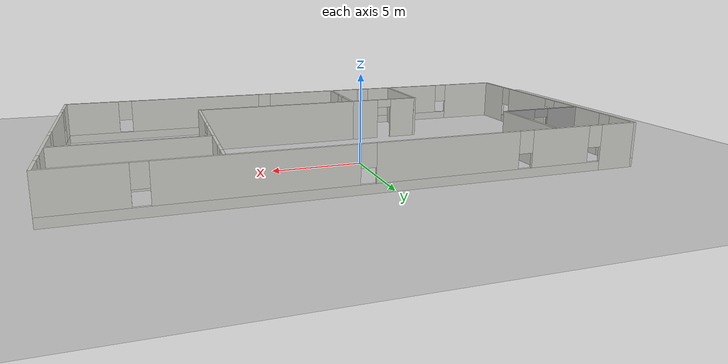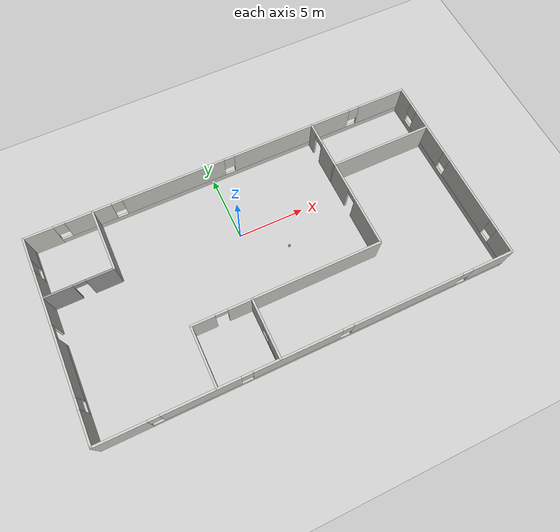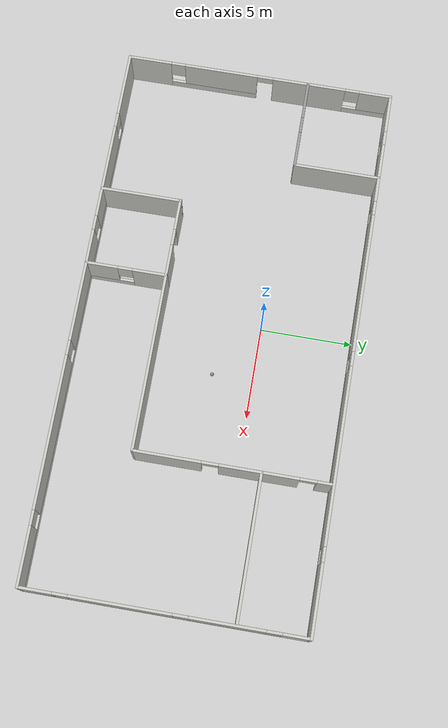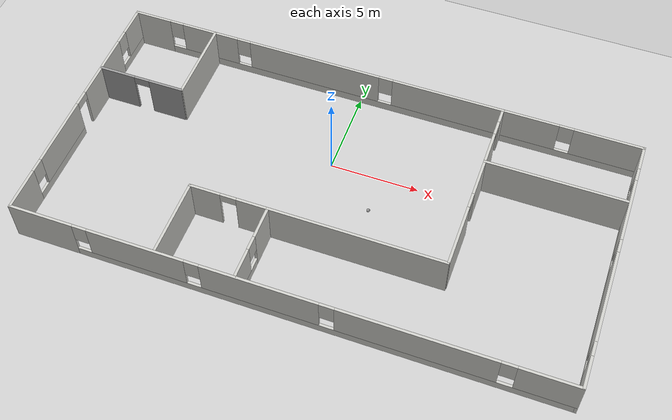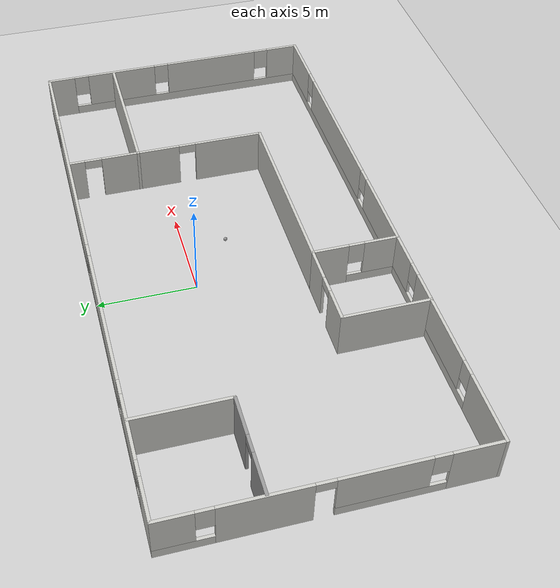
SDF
<sdf version="1.6">
 <world name="default">
  <light name="sun" type="directional">
   <pose>0 0 10 0 -0 0</pose>
   <diffuse>0.8 0.8 0.8 1</diffuse>
   <specular>0.2 0.2 0.2 1</specular>
   <attenuation>
    <range>1000</range>
    <constant>0.9</constant>
    <linear>0.01</linear>
    <quadratic>0.001</quadratic>
   </attenuation>
   <direction>-0.5 0.1 -0.9</direction>
  </light>
  <model name="ground_plane">
   <static>1</static>
   <link name="link">
    <collision name="collision">
     <geometry><plane><normal>0 0 1</normal><size>100 100</size></plane></geometry>
     <surface><friction><ode><mu>100</mu><mu2>50</mu2></ode></friction></surface>
    </collision>
    <visual name="visual">
     <cast_shadows>0</cast_shadows>
     <geometry><plane><normal>0 0 1</normal><size>100 100</size></plane></geometry>
     <material>
      <script><uri>file://media/materials/scripts/gazebo.material</uri><name>Gazebo/Grey</name></script>
     </material>
    </visual>
   </link>
  </model>
  <gravity>0 0 -9.8</gravity>
  <magnetic_field>6e-06 2.3e-05 -4.2e-05</magnetic_field>
  <atmosphere type="adiabatic"/>
  <physics name="default_physics" default="0" type="ode">
   <max_step_size>0.001</max_step_size>
   <real_time_factor>1</real_time_factor>
   <real_time_update_rate>1000</real_time_update_rate>
  </physics>
  <scene><ambient>0.4 0.4 0.4 1</ambient><background>0.7 0.7 0.7 1</background><shadows>1</shadows></scene>
  <spherical_coordinates>
   <surface_model>EARTH_WGS84</surface_model>
   <latitude_deg>0</latitude_deg>
   <longitude_deg>0</longitude_deg>
   <elevation>0</elevation>
   <heading_deg>0</heading_deg>
  </spherical_coordinates>
  <model name="ProjectWorld">
   <pose>0.9891 -2.42036 0 0 -0 0</pose>
   <link name="Wall_16">
    <pose>-12.4408 2.75859 0 0 -0 0</pose>
    <visual name="Wall_16_Visual_0">
     <pose>-1.45051 0 1.25 0 -0 0</pose>
     <geometry><box><size>2.09897 0.15 2.5</size></box></geometry>
     <material>
      <script><uri>file://media/materials/scripts/gazebo.material</uri><name>Gazebo/Grey</name></script>
      <ambient>1 1 1 1</ambient>
     </material>
     <meta><layer>0</layer></meta>
    </visual>
    <collision name="Wall_16_Collision_0">
     <geometry><box><size>2.09897 0.15 2.5</size></box></geometry>
     <pose>-1.45051 0 1.25 0 -0 0</pose>
    </collision>
    <visual name="Wall_16_Visual_1">
     <pose>1.49948 0 1.25 0 -0 0</pose>
     <geometry><box><size>2.00103 0.15 2.5</size></box></geometry>
     <material>
      <script><uri>file://media/materials/scripts/gazebo.material</uri><name>Gazebo/Grey</name></script>
      <ambient>1 1 1 1</ambient>
     </material>
     <meta><layer>0</layer></meta>
    </visual>
    <collision name="Wall_16_Collision_1">
     <geometry><box><size>2.00103 0.15 2.5</size></box></geometry>
     <pose>1.49948 0 1.25 0 -0 0</pose>
    </collision>
    <visual name="Wall_16_Visual_2">
     <pose>0.048969 0 2.25 0 -0 0</pose>
     <geometry><box><size>0.9 0.15 0.5</size></box></geometry>
     <material>
      <script><uri>file://media/materials/scripts/gazebo.material</uri><name>Gazebo/Grey</name></script>
      <ambient>1 1 1 1</ambient>
     </material>
     <meta><layer>0</layer></meta>
    </visual>
    <collision name="Wall_16_Collision_2">
     <geometry><box><size>0.9 0.15 0.5</size></box></geometry>
     <pose>0.048969 0 2.25 0 -0 0</pose>
    </collision>
   </link>
   <link name="Wall_18">
    <collision name="Wall_18_Collision">
     <geometry><box><size>4.75 0.15 2.5</size></box></geometry>
     <pose>0 0 1.25 0 -0 0</pose>
    </collision>
    <visual name="Wall_18_Visual">
     <pose>0 0 1.25 0 -0 0</pose>
     <geometry><box><size>4.75 0.15 2.5</size></box></geometry>
     <material>
      <script><uri>file://media/materials/scripts/gazebo.material</uri><name>Gazebo/CeilingTiled</name></script>
      <ambient>1 1 1 1</ambient>
     </material>
     <meta><layer>0</layer></meta>
    </visual>
    <pose>-9.95814 5.08471 0 0 0 -1.5708</pose>
   </link>
   <link name="Wall_2">
    <pose>0 -7.425 0 0 -0 0</pose>
    <visual name="Wall_2_Visual_0">
     <pose>-13.1819 0 1.25 0 -0 0</pose>
     <geometry><box><size>3.63618 0.15 2.5</size></box></geometry>
     <material>
      <script><uri>file://media/materials/scripts/gazebo.material</uri><name>Gazebo/CeilingTiled</name></script>
      <ambient>1 1 1 1</ambient>
     </material>
     <meta><layer>0</layer></meta>
    </visual>
    <collision name="Wall_2_Collision_0">
     <geometry><box><size>3.63618 0.15 2.5</size></box></geometry>
     <pose>-13.1819 0 1.25 0 -0 0</pose>
    </collision>
    <visual name="Wall_2_Visual_1">
     <pose>1.81809 0 0.25 0 -0 0</pose>
     <geometry><box><size>26.3638 0.15 0.5</size></box></geometry>
     <material>
      <script><uri>file://media/materials/scripts/gazebo.material</uri><name>Gazebo/CeilingTiled</name></script>
      <ambient>1 1 1 1</ambient>
     </material>
     <meta><layer>0</layer></meta>
    </visual>
    <collision name="Wall_2_Collision_1">
     <geometry><box><size>26.3638 0.15 0.5</size></box></geometry>
     <pose>1.81809 0 0.25 0 -0 0</pose>
    </collision>
    <visual name="Wall_2_Visual_2">
     <pose>-7.86633 0 1.5 0 -0 0</pose>
     <geometry><box><size>5.39498 0.15 2</size></box></geometry>
     <material>
      <script><uri>file://media/materials/scripts/gazebo.material</uri><name>Gazebo/CeilingTiled</name></script>
      <ambient>1 1 1 1</ambient>
     </material>
     <meta><layer>0</layer></meta>
    </visual>
    <collision name="Wall_2_Collision_2">
     <geometry><box><size>5.39498 0.15 2</size></box></geometry>
     <pose>-7.86633 0 1.5 0 -0 0</pose>
    </collision>
    <visual name="Wall_2_Visual_3">
     <pose>-1.19868 0 1.5 0 -0 0</pose>
     <geometry><box><size>6.34032 0.15 2</size></box></geometry>
     <material>
      <script><uri>file://media/materials/scripts/gazebo.material</uri><name>Gazebo/CeilingTiled</name></script>
      <ambient>1 1 1 1</ambient>
     </material>
     <meta><layer>0</layer></meta>
    </visual>
    <collision name="Wall_2_Collision_3">
     <geometry><box><size>6.34032 0.15 2</size></box></geometry>
     <pose>-1.19868 0 1.5 0 -0 0</pose>
    </collision>
    <visual name="Wall_2_Visual_4">
     <pose>6.89704 0 1.5 0 -0 0</pose>
     <geometry><box><size>8.25111 0.15 2</size></box></geometry>
     <material>
      <script><uri>file://media/materials/scripts/gazebo.material</uri><name>Gazebo/CeilingTiled</name></script>
      <ambient>1 1 1 1</ambient>
     </material>
     <meta><layer>0</layer></meta>
    </visual>
    <collision name="Wall_2_Collision_4">
     <geometry><box><size>8.25111 0.15 2</size></box></geometry>
     <pose>6.89704 0 1.5 0 -0 0</pose>
    </collision>
    <visual name="Wall_2_Visual_5">
     <pose>13.4113 0 1.5 0 -0 0</pose>
     <geometry><box><size>3.17741 0.15 2</size></box></geometry>
     <material>
      <script><uri>file://media/materials/scripts/gazebo.material</uri><name>Gazebo/CeilingTiled</name></script>
      <ambient>1 1 1 1</ambient>
     </material>
     <meta><layer>0</layer></meta>
    </visual>
    <collision name="Wall_2_Collision_5">
     <geometry><box><size>3.17741 0.15 2</size></box></geometry>
     <pose>13.4113 0 1.5 0 -0 0</pose>
    </collision>
    <visual name="Wall_2_Visual_6">
     <pose>-10.9638 0 1.9 0 -0 0</pose>
     <geometry><box><size>0.8 0.15 1.2</size></box></geometry>
     <material>
      <script><uri>file://media/materials/scripts/gazebo.material</uri><name>Gazebo/CeilingTiled</name></script>
      <ambient>1 1 1 1</ambient>
     </material>
     <meta><layer>0</layer></meta>
    </visual>
    <collision name="Wall_2_Collision_6">
     <geometry><box><size>0.8 0.15 1.2</size></box></geometry>
     <pose>-10.9638 0 1.9 0 -0 0</pose>
    </collision>
    <visual name="Wall_2_Visual_7">
     <pose>-4.76884 0 1.9 0 -0 0</pose>
     <geometry><box><size>0.8 0.15 1.2</size></box></geometry>
     <material>
      <script><uri>file://media/materials/scripts/gazebo.material</uri><name>Gazebo/CeilingTiled</name></script>
      <ambient>1 1 1 1</ambient>
     </material>
     <meta><layer>0</layer></meta>
    </visual>
    <collision name="Wall_2_Collision_7">
     <geometry><box><size>0.8 0.15 1.2</size></box></geometry>
     <pose>-4.76884 0 1.9 0 -0 0</pose>
    </collision>
    <visual name="Wall_2_Visual_8">
     <pose>2.37148 0 1.9 0 -0 0</pose>
     <geometry><box><size>0.8 0.15 1.2</size></box></geometry>
     <material>
      <script><uri>file://media/materials/scripts/gazebo.material</uri><name>Gazebo/CeilingTiled</name></script>
      <ambient>1 1 1 1</ambient>
     </material>
     <meta><layer>0</layer></meta>
    </visual>
    <collision name="Wall_2_Collision_8">
     <geometry><box><size>0.8 0.15 1.2</size></box></geometry>
     <pose>2.37148 0 1.9 0 -0 0</pose>
    </collision>
    <visual name="Wall_2_Visual_9">
     <pose>11.4226 0 1.9 0 -0 0</pose>
     <geometry><box><size>0.8 0.15 1.2</size></box></geometry>
     <material>
      <script><uri>file://media/materials/scripts/gazebo.material</uri><name>Gazebo/CeilingTiled</name></script>
      <ambient>1 1 1 1</ambient>
     </material>
     <meta><layer>0</layer></meta>
    </visual>
    <collision name="Wall_2_Collision_9">
     <geometry><box><size>0.8 0.15 1.2</size></box></geometry>
     <pose>11.4226 0 1.9 0 -0 0</pose>
    </collision>
   </link>
   <link name="Wall_20">
    <pose>7.17863 2.20971 0 0 0 -1.5708</pose>
    <visual name="Wall_20_Visual_0">
     <pose>-4.79966 0 1.25 0 -0 0</pose>
     <geometry><box><size>0.900688 0.15 2.5</size></box></geometry>
     <material>
      <script><uri>file://media/materials/scripts/gazebo.material</uri><name>Gazebo/CeilingTiled</name></script>
      <ambient>1 1 1 1</ambient>
     </material>
     <meta><layer>0</layer></meta>
    </visual>
    <collision name="Wall_20_Collision_0">
     <geometry><box><size>0.900688 0.15 2.5</size></box></geometry>
     <pose>-4.79966 0 1.25 0 -0 0</pose>
    </collision>
    <visual name="Wall_20_Visual_1">
     <pose>-1.34238 0 1.25 0 -0 0</pose>
     <geometry><box><size>4.21386 0.15 2.5</size></box></geometry>
     <material>
      <script><uri>file://media/materials/scripts/gazebo.material</uri><name>Gazebo/CeilingTiled</name></script>
      <ambient>1 1 1 1</ambient>
     </material>
     <meta><layer>0</layer></meta>
    </visual>
    <collision name="Wall_20_Collision_1">
     <geometry><box><size>4.21386 0.15 2.5</size></box></geometry>
     <pose>-1.34238 0 1.25 0 -0 0</pose>
    </collision>
    <visual name="Wall_20_Visual_2">
     <pose>3.45727 0 1.25 0 -0 0</pose>
     <geometry><box><size>3.58546 0.15 2.5</size></box></geometry>
     <material>
      <script><uri>file://media/materials/scripts/gazebo.material</uri><name>Gazebo/CeilingTiled</name></script>
      <ambient>1 1 1 1</ambient>
     </material>
     <meta><layer>0</layer></meta>
    </visual>
    <collision name="Wall_20_Collision_2">
     <geometry><box><size>3.58546 0.15 2.5</size></box></geometry>
     <pose>3.45727 0 1.25 0 -0 0</pose>
    </collision>
    <visual name="Wall_20_Visual_3">
     <pose>-3.89931 0 2.25 0 -0 0</pose>
     <geometry><box><size>0.9 0.15 0.5</size></box></geometry>
     <material>
      <script><uri>file://media/materials/scripts/gazebo.material</uri><name>Gazebo/CeilingTiled</name></script>
      <ambient>1 1 1 1</ambient>
     </material>
     <meta><layer>0</layer></meta>
    </visual>
    <collision name="Wall_20_Collision_3">
     <geometry><box><size>0.9 0.15 0.5</size></box></geometry>
     <pose>-3.89931 0 2.25 0 -0 0</pose>
    </collision>
    <visual name="Wall_20_Visual_4">
     <pose>1.21454 0 2.25 0 -0 0</pose>
     <geometry><box><size>0.9 0.15 0.5</size></box></geometry>
     <material>
      <script><uri>file://media/materials/scripts/gazebo.material</uri><name>Gazebo/CeilingTiled</name></script>
      <ambient>1 1 1 1</ambient>
     </material>
     <meta><layer>0</layer></meta>
    </visual>
    <collision name="Wall_20_Collision_4">
     <geometry><box><size>0.9 0.15 0.5</size></box></geometry>
     <pose>1.21454 0 2.25 0 -0 0</pose>
    </collision>
   </link>
   <link name="Wall_22">
    <collision name="Wall_22_Collision">
     <geometry><box><size>7.75 0.15 2.5</size></box></geometry>
     <pose>0 0 1.25 0 -0 0</pose>
    </collision>
    <visual name="Wall_22_Visual">
     <pose>0 0 1.25 0 -0 0</pose>
     <geometry><box><size>7.75 0.15 2.5</size></box></geometry>
     <material>
      <script><uri>file://media/materials/scripts/gazebo.material</uri><name>Gazebo/CeilingTiled</name></script>
      <ambient>1 1 1 1</ambient>
     </material>
     <meta><layer>0</layer></meta>
    </visual>
    <pose>10.9786 3.68381 0 0 -0 0</pose>
   </link>
   <link name="Wall_24">
    <collision name="Wall_24_Collision">
     <geometry><box><size>4.5 0.15 2.5</size></box></geometry>
     <pose>0 0 1.25 0 -0 0</pose>
    </collision>
    <visual name="Wall_24_Visual">
     <pose>0 0 1.25 0 -0 0</pose>
     <geometry><box><size>4.5 0.15 2.5</size></box></geometry>
     <material>
      <script><uri>file://media/materials/scripts/gazebo.material</uri><name>Gazebo/CeilingTiled</name></script>
      <ambient>1 1 1 1</ambient>
     </material>
     <meta><layer>0</layer></meta>
    </visual>
    <pose>-6.80031 -5.24388 0 0 -0 1.5708</pose>
   </link>
   <link name="Wall_25">
    <pose>-4.62531 -3.06888 0 0 -0 0</pose>
    <visual name="Wall_25_Visual_0">
     <pose>-1.36142 0 1.25 0 -0 0</pose>
     <geometry><box><size>1.77715 0.15 2.5</size></box></geometry>
     <material>
      <script><uri>file://media/materials/scripts/gazebo.material</uri><name>Gazebo/CeilingTiled</name></script>
      <ambient>1 1 1 1</ambient>
     </material>
     <meta><layer>0</layer></meta>
    </visual>
    <collision name="Wall_25_Collision_0">
     <geometry><box><size>1.77715 0.15 2.5</size></box></geometry>
     <pose>-1.36142 0 1.25 0 -0 0</pose>
    </collision>
    <visual name="Wall_25_Visual_1">
     <pose>1.33858 0 1.25 0 -0 0</pose>
     <geometry><box><size>1.82285 0.15 2.5</size></box></geometry>
     <material>
      <script><uri>file://media/materials/scripts/gazebo.material</uri><name>Gazebo/CeilingTiled</name></script>
      <ambient>1 1 1 1</ambient>
     </material>
     <meta><layer>0</layer></meta>
    </visual>
    <collision name="Wall_25_Collision_1">
     <geometry><box><size>1.82285 0.15 2.5</size></box></geometry>
     <pose>1.33858 0 1.25 0 -0 0</pose>
    </collision>
    <visual name="Wall_25_Visual_2">
     <pose>-0.022848 0 2.25 0 -0 0</pose>
     <geometry><box><size>0.9 0.15 0.5</size></box></geometry>
     <material>
      <script><uri>file://media/materials/scripts/gazebo.material</uri><name>Gazebo/CeilingTiled</name></script>
      <ambient>1 1 1 1</ambient>
     </material>
     <meta><layer>0</layer></meta>
    </visual>
    <collision name="Wall_25_Collision_2">
     <geometry><box><size>0.9 0.15 0.5</size></box></geometry>
     <pose>-0.022848 0 2.25 0 -0 0</pose>
    </collision>
   </link>
   <link name="Wall_26">
    <pose>-2.45031 -5.24388 0 0 0 -1.5708</pose>
    <visual name="Wall_26_Visual_0">
     <pose>-1.29346 0 1.25 0 -0 0</pose>
     <geometry><box><size>1.91308 0.15 2.5</size></box></geometry>
     <material>
      <script><uri>file://media/materials/scripts/gazebo.material</uri><name>Gazebo/CeilingTiled</name></script>
      <ambient>1 1 1 1</ambient>
     </material>
     <meta><layer>0</layer></meta>
    </visual>
    <collision name="Wall_26_Collision_0">
     <geometry><box><size>1.91308 0.15 2.5</size></box></geometry>
     <pose>-1.29346 0 1.25 0 -0 0</pose>
    </collision>
    <visual name="Wall_26_Visual_1">
     <pose>0.956538 0 0.25 0 -0 0</pose>
     <geometry><box><size>2.58692 0.15 0.5</size></box></geometry>
     <material>
      <script><uri>file://media/materials/scripts/gazebo.material</uri><name>Gazebo/CeilingTiled</name></script>
      <ambient>1 1 1 1</ambient>
     </material>
     <meta><layer>0</layer></meta>
    </visual>
    <collision name="Wall_26_Collision_1">
     <geometry><box><size>2.58692 0.15 0.5</size></box></geometry>
     <pose>0.956538 0 0.25 0 -0 0</pose>
    </collision>
    <visual name="Wall_26_Visual_2">
     <pose>1.35654 0 1.5 0 -0 0</pose>
     <geometry><box><size>1.78693 0.15 2</size></box></geometry>
     <material>
      <script><uri>file://media/materials/scripts/gazebo.material</uri><name>Gazebo/CeilingTiled</name></script>
      <ambient>1 1 1 1</ambient>
     </material>
     <meta><layer>0</layer></meta>
    </visual>
    <collision name="Wall_26_Collision_2">
     <geometry><box><size>1.78693 0.15 2</size></box></geometry>
     <pose>1.35654 0 1.5 0 -0 0</pose>
    </collision>
    <visual name="Wall_26_Visual_3">
     <pose>0.063075 0 1.9 0 -0 0</pose>
     <geometry><box><size>0.8 0.15 1.2</size></box></geometry>
     <material>
      <script><uri>file://media/materials/scripts/gazebo.material</uri><name>Gazebo/CeilingTiled</name></script>
      <ambient>1 1 1 1</ambient>
     </material>
     <meta><layer>0</layer></meta>
    </visual>
    <collision name="Wall_26_Collision_3">
     <geometry><box><size>0.8 0.15 1.2</size></box></geometry>
     <pose>0.063075 0 1.9 0 -0 0</pose>
    </collision>
   </link>
   <link name="Wall_29">
    <collision name="Wall_29_Collision">
     <geometry><box><size>9.75 0.15 2.5</size></box></geometry>
     <pose>0 0 1.25 0 -0 0</pose>
    </collision>
    <visual name="Wall_29_Visual">
     <pose>0 0 1.25 0 -0 0</pose>
     <geometry><box><size>9.75 0.15 2.5</size></box></geometry>
     <material>
      <script><uri>file://media/materials/scripts/gazebo.material</uri><name>Gazebo/CeilingTiled</name></script>
      <ambient>1 1 1 1</ambient>
     </material>
     <meta><layer>0</layer></meta>
    </visual>
    <pose>2.34969 -3.06888 0 0 -0 0</pose>
   </link>
   <link name="Wall_5">
    <pose>-14.925 0 0 0 -0 1.5708</pose>
    <visual name="Wall_5_Visual_0">
     <pose>-6.2716 0 1.25 0 -0 0</pose>
     <geometry><box><size>2.45679 0.15 2.5</size></box></geometry>
     <material>
      <script><uri>file://media/materials/scripts/gazebo.material</uri><name>Gazebo/CeilingTiled</name></script>
      <ambient>1 1 1 1</ambient>
     </material>
     <meta><layer>0</layer></meta>
    </visual>
    <collision name="Wall_5_Collision_0">
     <geometry><box><size>2.45679 0.15 2.5</size></box></geometry>
     <pose>-6.2716 0 1.25 0 -0 0</pose>
    </collision>
    <visual name="Wall_5_Visual_1">
     <pose>2.82381 0 1.25 0 -0 0</pose>
     <geometry><box><size>4.09794 0.15 2.5</size></box></geometry>
     <material>
      <script><uri>file://media/materials/scripts/gazebo.material</uri><name>Gazebo/CeilingTiled</name></script>
      <ambient>1 1 1 1</ambient>
     </material>
     <meta><layer>0</layer></meta>
    </visual>
    <collision name="Wall_5_Collision_1">
     <geometry><box><size>4.09794 0.15 2.5</size></box></geometry>
     <pose>2.82381 0 1.25 0 -0 0</pose>
    </collision>
    <visual name="Wall_5_Visual_2">
     <pose>-2.58418 0 0.25 0 -0 0</pose>
     <geometry><box><size>4.91805 0.15 0.5</size></box></geometry>
     <material>
      <script><uri>file://media/materials/scripts/gazebo.material</uri><name>Gazebo/CeilingTiled</name></script>
      <ambient>1 1 1 1</ambient>
     </material>
     <meta><layer>0</layer></meta>
    </visual>
    <collision name="Wall_5_Collision_2">
     <geometry><box><size>4.91805 0.15 0.5</size></box></geometry>
     <pose>-2.58418 0 0.25 0 -0 0</pose>
    </collision>
    <visual name="Wall_5_Visual_3">
     <pose>6.18639 0 0.25 0 -0 0</pose>
     <geometry><box><size>2.62722 0.15 0.5</size></box></geometry>
     <material>
      <script><uri>file://media/materials/scripts/gazebo.material</uri><name>Gazebo/CeilingTiled</name></script>
      <ambient>1 1 1 1</ambient>
     </material>
     <meta><layer>0</layer></meta>
    </visual>
    <collision name="Wall_5_Collision_3">
     <geometry><box><size>2.62722 0.15 0.5</size></box></geometry>
     <pose>6.18639 0 0.25 0 -0 0</pose>
    </collision>
    <visual name="Wall_5_Visual_4">
     <pose>-2.18418 0 1.5 0 -0 0</pose>
     <geometry><box><size>4.11805 0.15 2</size></box></geometry>
     <material>
      <script><uri>file://media/materials/scripts/gazebo.material</uri><name>Gazebo/CeilingTiled</name></script>
      <ambient>1 1 1 1</ambient>
     </material>
     <meta><layer>0</layer></meta>
    </visual>
    <collision name="Wall_5_Collision_4">
     <geometry><box><size>4.11805 0.15 2</size></box></geometry>
     <pose>-2.18418 0 1.5 0 -0 0</pose>
    </collision>
    <visual name="Wall_5_Visual_5">
     <pose>-2.18418 0 1.5 0 -0 0</pose>
     <geometry><box><size>4.11805 0.15 2</size></box></geometry>
     <material>
      <script><uri>file://media/materials/scripts/gazebo.material</uri><name>Gazebo/CeilingTiled</name></script>
      <ambient>1 1 1 1</ambient>
     </material>
     <meta><layer>0</layer></meta>
    </visual>
    <collision name="Wall_5_Collision_5">
     <geometry><box><size>4.11805 0.15 2</size></box></geometry>
     <pose>-2.18418 0 1.5 0 -0 0</pose>
    </collision>
    <visual name="Wall_5_Visual_6">
     <pose>6.58639 0 1.5 0 -0 0</pose>
     <geometry><box><size>1.82722 0.15 2</size></box></geometry>
     <material>
      <script><uri>file://media/materials/scripts/gazebo.material</uri><name>Gazebo/CeilingTiled</name></script>
      <ambient>1 1 1 1</ambient>
     </material>
     <meta><layer>0</layer></meta>
    </visual>
    <collision name="Wall_5_Collision_6">
     <geometry><box><size>1.82722 0.15 2</size></box></geometry>
     <pose>6.58639 0 1.5 0 -0 0</pose>
    </collision>
    <visual name="Wall_5_Visual_7">
     <pose>-4.64321 0 1.9 0 -0 0</pose>
     <geometry><box><size>0.8 0.15 1.2</size></box></geometry>
     <material>
      <script><uri>file://media/materials/scripts/gazebo.material</uri><name>Gazebo/CeilingTiled</name></script>
      <ambient>1 1 1 1</ambient>
     </material>
     <meta><layer>0</layer></meta>
    </visual>
    <collision name="Wall_5_Collision_7">
     <geometry><box><size>0.8 0.15 1.2</size></box></geometry>
     <pose>-4.64321 0 1.9 0 -0 0</pose>
    </collision>
    <visual name="Wall_5_Visual_8">
     <pose>5.27278 0 1.9 0 -0 0</pose>
     <geometry><box><size>0.8 0.15 1.2</size></box></geometry>
     <material>
      <script><uri>file://media/materials/scripts/gazebo.material</uri><name>Gazebo/CeilingTiled</name></script>
      <ambient>1 1 1 1</ambient>
     </material>
     <meta><layer>0</layer></meta>
    </visual>
    <collision name="Wall_5_Collision_8">
     <geometry><box><size>0.8 0.15 1.2</size></box></geometry>
     <pose>5.27278 0 1.9 0 -0 0</pose>
    </collision>
    <visual name="Wall_5_Visual_9">
     <pose>0.324843 0 2.25 0 -0 0</pose>
     <geometry><box><size>0.9 0.15 0.5</size></box></geometry>
     <material>
      <script><uri>file://media/materials/scripts/gazebo.material</uri><name>Gazebo/CeilingTiled</name></script>
      <ambient>1 1 1 1</ambient>
     </material>
     <meta><layer>0</layer></meta>
    </visual>
    <collision name="Wall_5_Collision_9">
     <geometry><box><size>0.9 0.15 0.5</size></box></geometry>
     <pose>0.324843 0 2.25 0 -0 0</pose>
    </collision>
    <visual name="Wall_5_Visual_10">
     <pose>0.324843 0 2.25 0 -0 0</pose>
     <geometry><box><size>0.9 0.15 0.5</size></box></geometry>
     <material>
      <script><uri>file://media/materials/scripts/gazebo.material</uri><name>Gazebo/CeilingTiled</name></script>
      <ambient>1 1 1 1</ambient>
     </material>
     <meta><layer>0</layer></meta>
    </visual>
    <collision name="Wall_5_Collision_10">
     <geometry><box><size>0.9 0.15 0.5</size></box></geometry>
     <pose>0.324843 0 2.25 0 -0 0</pose>
    </collision>
   </link>
   <link name="Wall_7">
    <pose>0 7.425 0 0 -0 0</pose>
    <visual name="Wall_7_Visual_0">
     <pose>-13.8959 0 1.25 0 -0 0</pose>
     <geometry><box><size>2.20812 0.15 2.5</size></box></geometry>
     <material>
      <script><uri>file://media/materials/scripts/gazebo.material</uri><name>Gazebo/CeilingTiled</name></script>
      <ambient>1 1 1 1</ambient>
     </material>
     <meta><layer>0</layer></meta>
    </visual>
    <collision name="Wall_7_Collision_0">
     <geometry><box><size>2.20812 0.15 2.5</size></box></geometry>
     <pose>-13.8959 0 1.25 0 -0 0</pose>
    </collision>
    <visual name="Wall_7_Visual_1">
     <pose>1.10406 0 0.25 0 -0 0</pose>
     <geometry><box><size>27.7919 0.15 0.5</size></box></geometry>
     <material>
      <script><uri>file://media/materials/scripts/gazebo.material</uri><name>Gazebo/CeilingTiled</name></script>
      <ambient>1 1 1 1</ambient>
     </material>
     <meta><layer>0</layer></meta>
    </visual>
    <collision name="Wall_7_Collision_1">
     <geometry><box><size>27.7919 0.15 0.5</size></box></geometry>
     <pose>1.10406 0 0.25 0 -0 0</pose>
    </collision>
    <visual name="Wall_7_Visual_2">
     <pose>-10.28 0 1.5 0 -0 0</pose>
     <geometry><box><size>3.42385 0.15 2</size></box></geometry>
     <material>
      <script><uri>file://media/materials/scripts/gazebo.material</uri><name>Gazebo/CeilingTiled</name></script>
      <ambient>1 1 1 1</ambient>
     </material>
     <meta><layer>0</layer></meta>
    </visual>
    <collision name="Wall_7_Collision_2">
     <geometry><box><size>3.42385 0.15 2</size></box></geometry>
     <pose>-10.28 0 1.5 0 -0 0</pose>
    </collision>
    <visual name="Wall_7_Visual_3">
     <pose>-3.86373 0 1.5 0 -0 0</pose>
     <geometry><box><size>7.80861 0.15 2</size></box></geometry>
     <material>
      <script><uri>file://media/materials/scripts/gazebo.material</uri><name>Gazebo/CeilingTiled</name></script>
      <ambient>1 1 1 1</ambient>
     </material>
     <meta><layer>0</layer></meta>
    </visual>
    <collision name="Wall_7_Collision_3">
     <geometry><box><size>7.80861 0.15 2</size></box></geometry>
     <pose>-3.86373 0 1.5 0 -0 0</pose>
    </collision>
    <visual name="Wall_7_Visual_4">
     <pose>5.58965 0 1.5 0 -0 0</pose>
     <geometry><box><size>9.49815 0.15 2</size></box></geometry>
     <material>
      <script><uri>file://media/materials/scripts/gazebo.material</uri><name>Gazebo/CeilingTiled</name></script>
      <ambient>1 1 1 1</ambient>
     </material>
     <meta><layer>0</layer></meta>
    </visual>
    <collision name="Wall_7_Collision_4">
     <geometry><box><size>9.49815 0.15 2</size></box></geometry>
     <pose>5.58965 0 1.5 0 -0 0</pose>
    </collision>
    <visual name="Wall_7_Visual_5">
     <pose>13.0694 0 1.5 0 -0 0</pose>
     <geometry><box><size>3.86127 0.15 2</size></box></geometry>
     <material>
      <script><uri>file://media/materials/scripts/gazebo.material</uri><name>Gazebo/CeilingTiled</name></script>
      <ambient>1 1 1 1</ambient>
     </material>
     <meta><layer>0</layer></meta>
    </visual>
    <collision name="Wall_7_Collision_5">
     <geometry><box><size>3.86127 0.15 2</size></box></geometry>
     <pose>13.0694 0 1.5 0 -0 0</pose>
    </collision>
    <visual name="Wall_7_Visual_6">
     <pose>-12.3919 0 1.9 0 -0 0</pose>
     <geometry><box><size>0.8 0.15 1.2</size></box></geometry>
     <material>
      <script><uri>file://media/materials/scripts/gazebo.material</uri><name>Gazebo/CeilingTiled</name></script>
      <ambient>1 1 1 1</ambient>
     </material>
     <meta><layer>0</layer></meta>
    </visual>
    <collision name="Wall_7_Collision_6">
     <geometry><box><size>0.8 0.15 1.2</size></box></geometry>
     <pose>-12.3919 0 1.9 0 -0 0</pose>
    </collision>
    <visual name="Wall_7_Visual_7">
     <pose>-8.16803 0 1.9 0 -0 0</pose>
     <geometry><box><size>0.8 0.15 1.2</size></box></geometry>
     <material>
      <script><uri>file://media/materials/scripts/gazebo.material</uri><name>Gazebo/CeilingTiled</name></script>
      <ambient>1 1 1 1</ambient>
     </material>
     <meta><layer>0</layer></meta>
    </visual>
    <collision name="Wall_7_Collision_7">
     <geometry><box><size>0.8 0.15 1.2</size></box></geometry>
     <pose>-8.16803 0 1.9 0 -0 0</pose>
    </collision>
    <visual name="Wall_7_Visual_8">
     <pose>0.440579 0 1.9 0 -0 0</pose>
     <geometry><box><size>0.8 0.15 1.2</size></box></geometry>
     <material>
      <script><uri>file://media/materials/scripts/gazebo.material</uri><name>Gazebo/CeilingTiled</name></script>
      <ambient>1 1 1 1</ambient>
     </material>
     <meta><layer>0</layer></meta>
    </visual>
    <collision name="Wall_7_Collision_8">
     <geometry><box><size>0.8 0.15 1.2</size></box></geometry>
     <pose>0.440579 0 1.9 0 -0 0</pose>
    </collision>
    <visual name="Wall_7_Visual_9">
     <pose>10.7387 0 1.9 0 -0 0</pose>
     <geometry><box><size>0.8 0.15 1.2</size></box></geometry>
     <material>
      <script><uri>file://media/materials/scripts/gazebo.material</uri><name>Gazebo/CeilingTiled</name></script>
      <ambient>1 1 1 1</ambient>
     </material>
     <meta><layer>0</layer></meta>
    </visual>
    <collision name="Wall_7_Collision_9">
     <geometry><box><size>0.8 0.15 1.2</size></box></geometry>
     <pose>10.7387 0 1.9 0 -0 0</pose>
    </collision>
   </link>
   <link name="Wall_8">
    <pose>14.925 0 0 0 0 -1.5708</pose>
    <visual name="Wall_8_Visual_0">
     <pose>-6.73724 0 1.25 0 -0 0</pose>
     <geometry><box><size>1.52551 0.15 2.5</size></box></geometry>
     <material>
      <script><uri>file://media/materials/scripts/gazebo.material</uri><name>Gazebo/CeilingTiled</name></script>
      <ambient>1 1 1 1</ambient>
     </material>
     <meta><layer>0</layer></meta>
    </visual>
    <collision name="Wall_8_Collision_0">
     <geometry><box><size>1.52551 0.15 2.5</size></box></geometry>
     <pose>-6.73724 0 1.25 0 -0 0</pose>
    </collision>
    <visual name="Wall_8_Visual_1">
     <pose>0.762757 0 0.25 0 -0 0</pose>
     <geometry><box><size>13.4745 0.15 0.5</size></box></geometry>
     <material>
      <script><uri>file://media/materials/scripts/gazebo.material</uri><name>Gazebo/CeilingTiled</name></script>
      <ambient>1 1 1 1</ambient>
     </material>
     <meta><layer>0</layer></meta>
    </visual>
    <collision name="Wall_8_Collision_1">
     <geometry><box><size>13.4745 0.15 0.5</size></box></geometry>
     <pose>0.762757 0 0.25 0 -0 0</pose>
    </collision>
    <visual name="Wall_8_Visual_2">
     <pose>-3.21114 0 1.5 0 -0 0</pose>
     <geometry><box><size>3.92669 0.15 2</size></box></geometry>
     <material>
      <script><uri>file://media/materials/scripts/gazebo.material</uri><name>Gazebo/CeilingTiled</name></script>
      <ambient>1 1 1 1</ambient>
     </material>
     <meta><layer>0</layer></meta>
    </visual>
    <collision name="Wall_8_Collision_2">
     <geometry><box><size>3.92669 0.15 2</size></box></geometry>
     <pose>-3.21114 0 1.5 0 -0 0</pose>
    </collision>
    <visual name="Wall_8_Visual_3">
     <pose>2.20947 0 1.5 0 -0 0</pose>
     <geometry><box><size>5.31453 0.15 2</size></box></geometry>
     <material>
      <script><uri>file://media/materials/scripts/gazebo.material</uri><name>Gazebo/CeilingTiled</name></script>
      <ambient>1 1 1 1</ambient>
     </material>
     <meta><layer>0</layer></meta>
    </visual>
    <collision name="Wall_8_Collision_3">
     <geometry><box><size>5.31453 0.15 2</size></box></geometry>
     <pose>2.20947 0 1.5 0 -0 0</pose>
    </collision>
    <visual name="Wall_8_Visual_4">
     <pose>6.58336 0 1.5 0 -0 0</pose>
     <geometry><box><size>1.83327 0.15 2</size></box></geometry>
     <material>
      <script><uri>file://media/materials/scripts/gazebo.material</uri><name>Gazebo/CeilingTiled</name></script>
      <ambient>1 1 1 1</ambient>
     </material>
     <meta><layer>0</layer></meta>
    </visual>
    <collision name="Wall_8_Collision_4">
     <geometry><box><size>1.83327 0.15 2</size></box></geometry>
     <pose>6.58336 0 1.5 0 -0 0</pose>
    </collision>
    <visual name="Wall_8_Visual_5">
     <pose>-5.57449 0 1.9 0 -0 0</pose>
     <geometry><box><size>0.8 0.15 1.2</size></box></geometry>
     <material>
      <script><uri>file://media/materials/scripts/gazebo.material</uri><name>Gazebo/CeilingTiled</name></script>
      <ambient>1 1 1 1</ambient>
     </material>
     <meta><layer>0</layer></meta>
    </visual>
    <collision name="Wall_8_Collision_5">
     <geometry><box><size>0.8 0.15 1.2</size></box></geometry>
     <pose>-5.57449 0 1.9 0 -0 0</pose>
    </collision>
    <visual name="Wall_8_Visual_6">
     <pose>-0.847796 0 1.9 0 -0 0</pose>
     <geometry><box><size>0.8 0.15 1.2</size></box></geometry>
     <material>
      <script><uri>file://media/materials/scripts/gazebo.material</uri><name>Gazebo/CeilingTiled</name></script>
      <ambient>1 1 1 1</ambient>
     </material>
     <meta><layer>0</layer></meta>
    </visual>
    <collision name="Wall_8_Collision_6">
     <geometry><box><size>0.8 0.15 1.2</size></box></geometry>
     <pose>-0.847796 0 1.9 0 -0 0</pose>
    </collision>
    <visual name="Wall_8_Visual_7">
     <pose>5.26673 0 1.9 0 -0 0</pose>
     <geometry><box><size>0.8 0.15 1.2</size></box></geometry>
     <material>
      <script><uri>file://media/materials/scripts/gazebo.material</uri><name>Gazebo/CeilingTiled</name></script>
      <ambient>1 1 1 1</ambient>
     </material>
     <meta><layer>0</layer></meta>
    </visual>
    <collision name="Wall_8_Collision_7">
     <geometry><box><size>0.8 0.15 1.2</size></box></geometry>
     <pose>5.26673 0 1.9 0 -0 0</pose>
    </collision>
   </link>
   <static>1</static>
  </model>
  <model name="whiteBall">
   <link name="link_1">
    <inertial>
     <mass>1</mass>
     <inertia><ixx>0.1</ixx><ixy>0</ixy><ixz>0</ixz><iyy>0.1</iyy><iyz>0</iyz><izz>0.1</izz></inertia>
    </inertial>
    <visual name="visual">
     <geometry><sphere><radius>0.1</radius></sphere></geometry>
     <material>
      <lighting>1</lighting>
      <script><uri>file://media/materials/scripts/gazebo.material</uri><name>Gazebo/Grey</name></script>
      <shader type="pixel"><normal_map>__default__</normal_map></shader>
      <ambient>1 1 1 1</ambient>
      <diffuse>1 1 1 1</diffuse>
      <specular>1 1 1 1</specular>
      <emissive>1 1 1 1</emissive>
     </material>
    </visual>
    <collision name="collision">
     <geometry><sphere><radius>0.1</radius></sphere></geometry>
     <surface>
      <friction>
       <ode><mu>1</mu><mu2>1</mu2><fdir1>0 0 0</fdir1><slip1>0</slip1><slip2>0</slip2></ode>
       <torsional>
        <coefficient>1</coefficient>
        <patch_radius>0</patch_radius>
        <surface_radius>0</surface_radius>
        <use_patch_radius>1</use_patch_radius>
        <ode><slip>0</slip></ode>
       </torsional>
      </friction>
      <bounce><restitution_coefficient>0</restitution_coefficient><threshold>1e+06</threshold></bounce>
      <contact>
       <collide_without_contact>0</collide_without_contact>
       <collide_without_contact_bitmask>1</collide_without_contact_bitmask>
       <collide_bitmask>1</collide_bitmask>
       <ode>
        <soft_cfm>0</soft_cfm>
        <soft_erp>0.2</soft_erp>
        <kp>1e+13</kp>
        <kd>1</kd>
        <max_vel>0.01</max_vel>
        <min_depth>0</min_depth>
       </ode>
       <bullet>
        <split_impulse>1</split_impulse>
        <split_impulse_penetration_threshold>-0.01</split_impulse_penetration_threshold>
        <soft_cfm>0</soft_cfm>
        <soft_erp>0.2</soft_erp>
        <kp>1e+13</kp>
        <kd>1</kd>
       </bullet>
      </contact>
     </surface>
    </collision>
   </link>
   <static>0</static>
   <pose>2.92809 -2.22267 0.1 0 -0 0</pose>
  </model>
 </world>
</sdf>
